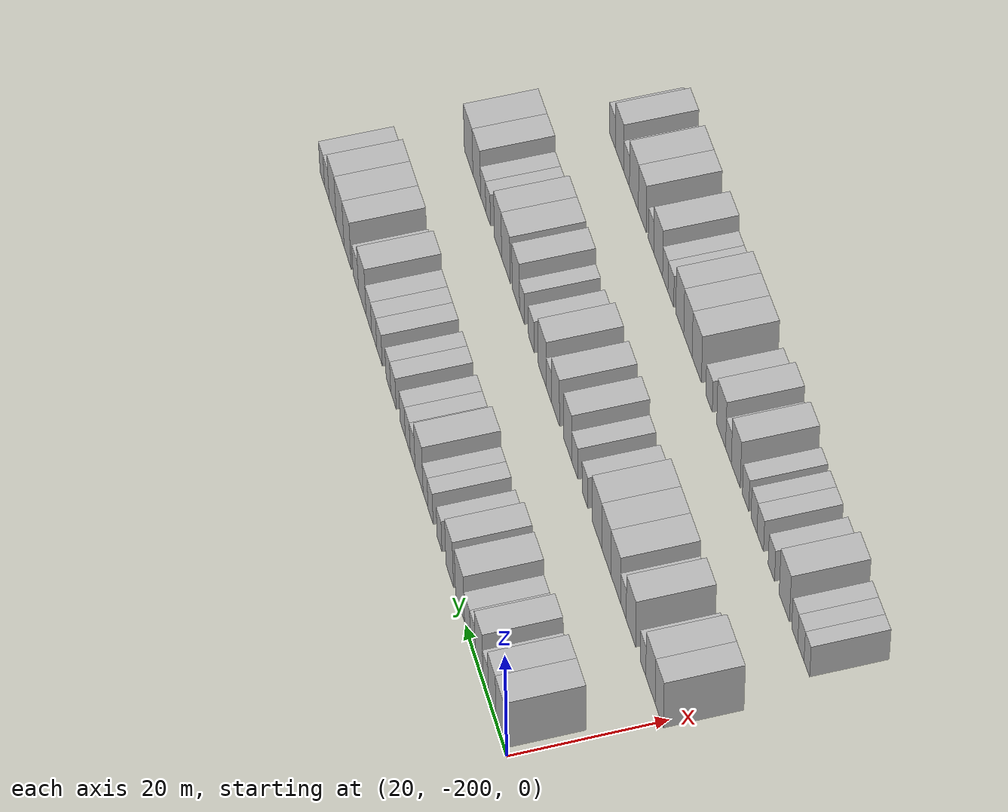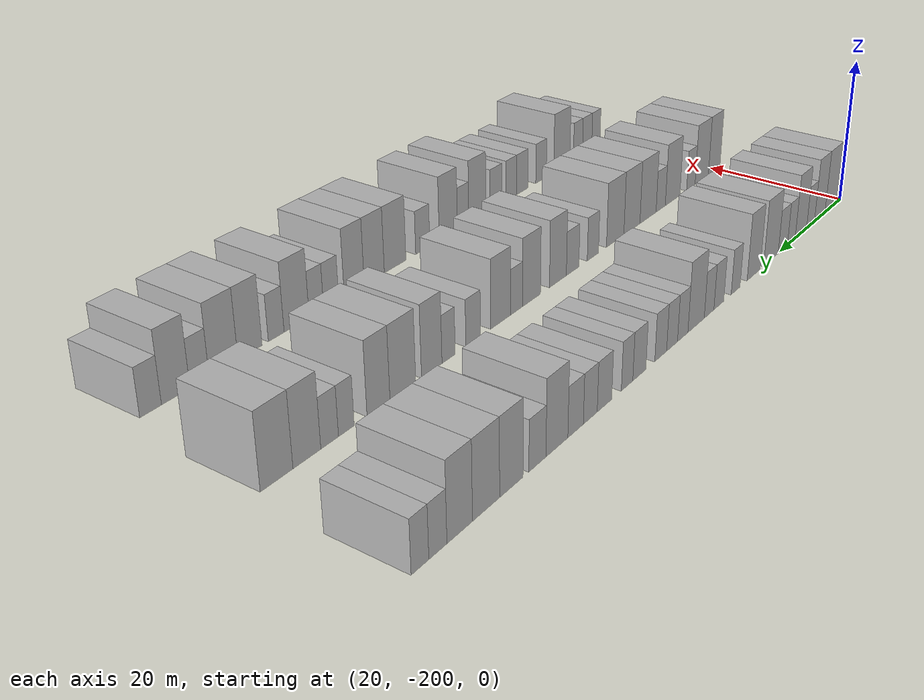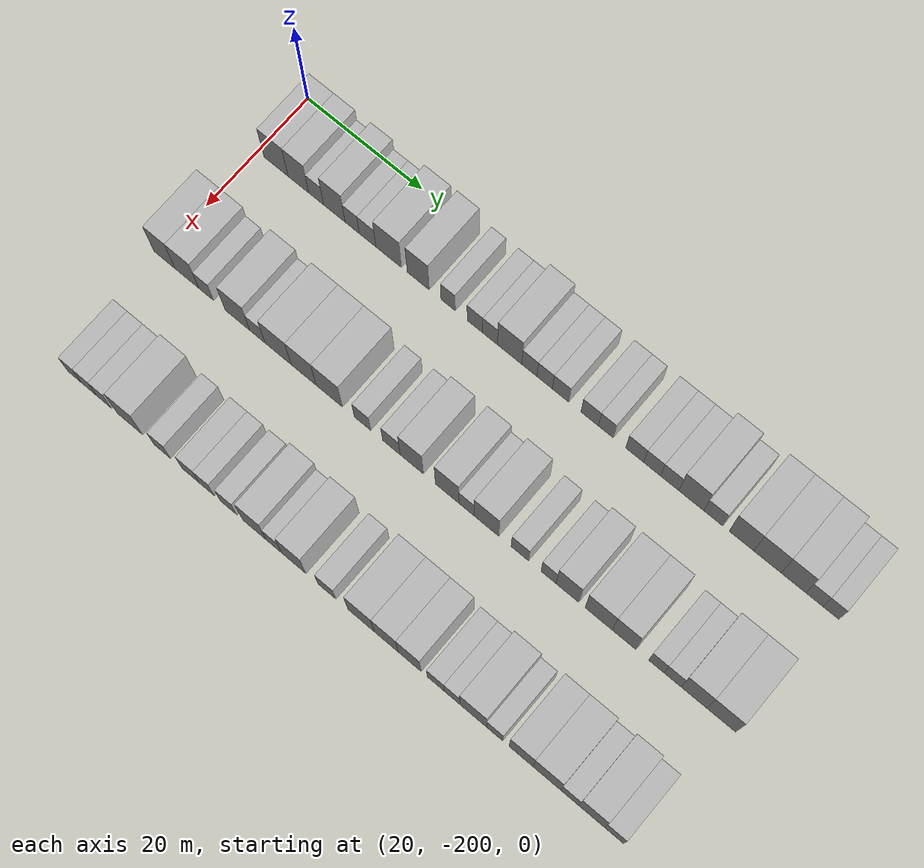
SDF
<sdf version="1.6">
 <world name="default">
  <model name="building_34">
   <static>1</static>
   <pose>25.0000 -196.7236 0 0.000000 0.000000 0.000000</pose>
   <link name="link">
    <pose>0 0 4.50 0 0 0</pose>
    <collision name="collision"><geometry><box><size>10.0000 4.2052 9.0000</size></box></geometry></collision>
    <visual name="visual">
     <cast_shadows>0</cast_shadows>
     <geometry><box><size>10.0000 4.2052 9.0000</size></box></geometry>
     <material>
      <script>
       <uri>model://HANNAS_wall/materials/scripts</uri>
       <uri>model://HANNAS_wall/materials/textures</uri>
       <name>vrc/HANNAS_wall</name>
      </script>
     </material>
    </visual>
   </link>
  </model>
  <model name="building_35">
   <static>1</static>
   <pose>25.0000 -192.8095 0 0.000000 0.000000 0.000000</pose>
   <link name="link">
    <pose>0 0 4.50 0 0 0</pose>
    <collision name="collision"><geometry><box><size>10.0000 3.6229 9.0000</size></box></geometry></collision>
    <visual name="visual">
     <cast_shadows>0</cast_shadows>
     <geometry><box><size>10.0000 3.6229 9.0000</size></box></geometry>
     <material>
      <script>
       <uri>model://HANNAS_wall/materials/scripts</uri>
       <uri>model://HANNAS_wall/materials/textures</uri>
       <name>vrc/HANNAS_wall</name>
      </script>
     </material>
    </visual>
   </link>
  </model>
  <model name="building_36">
   <static>1</static>
   <pose>25.0000 -189.6984 0 0.000000 0.000000 0.000000</pose>
   <link name="link">
    <pose>0 0 3.00 0 0 0</pose>
    <collision name="collision"><geometry><box><size>10.0000 2.5993 6.0000</size></box></geometry></collision>
    <visual name="visual">
     <cast_shadows>0</cast_shadows>
     <geometry><box><size>10.0000 2.5993 6.0000</size></box></geometry>
     <material>
      <script>
       <uri>model://HANNAS_wall/materials/scripts</uri>
       <uri>model://HANNAS_wall/materials/textures</uri>
       <name>vrc/HANNAS_wall</name>
      </script>
     </material>
    </visual>
   </link>
  </model>
  <model name="building_37">
   <static>1</static>
   <pose>25.0000 -186.5488 0 0.000000 0.000000 0.000000</pose>
   <link name="link">
    <pose>0 0 4.50 0 0 0</pose>
    <collision name="collision"><geometry><box><size>10.0000 3.7000 9.0000</size></box></geometry></collision>
    <visual name="visual">
     <cast_shadows>0</cast_shadows>
     <geometry><box><size>10.0000 3.7000 9.0000</size></box></geometry>
     <material>
      <script>
       <uri>model://HANNAS_wall/materials/scripts</uri>
       <uri>model://HANNAS_wall/materials/textures</uri>
       <name>vrc/HANNAS_wall</name>
      </script>
     </material>
    </visual>
   </link>
  </model>
  <model name="building_38">
   <static>1</static>
   <pose>25.0000 -183.4717 0 0.000000 0.000000 0.000000</pose>
   <link name="link">
    <pose>0 0 3.00 0 0 0</pose>
    <collision name="collision"><geometry><box><size>10.0000 2.4542 6.0000</size></box></geometry></collision>
    <visual name="visual">
     <cast_shadows>0</cast_shadows>
     <geometry><box><size>10.0000 2.4542 6.0000</size></box></geometry>
     <material>
      <script>
       <uri>model://HANNAS_wall/materials/scripts</uri>
       <uri>model://HANNAS_wall/materials/textures</uri>
       <name>vrc/HANNAS_wall</name>
      </script>
     </material>
    </visual>
   </link>
  </model>
  <model name="building_39">
   <static>1</static>
   <pose>25.0000 -180.8231 0 0.000000 0.000000 0.000000</pose>
   <link name="link">
    <pose>0 0 3.00 0 0 0</pose>
    <collision name="collision"><geometry><box><size>10.0000 2.8430 6.0000</size></box></geometry></collision>
    <visual name="visual">
     <cast_shadows>0</cast_shadows>
     <geometry><box><size>10.0000 2.8430 6.0000</size></box></geometry>
     <material>
      <script>
       <uri>model://HANNAS_wall/materials/scripts</uri>
       <uri>model://HANNAS_wall/materials/textures</uri>
       <name>vrc/HANNAS_wall</name>
      </script>
     </material>
    </visual>
   </link>
  </model>
  <model name="building_40">
   <static>1</static>
   <pose>25.0000 -177.2115 0 0.000000 0.000000 0.000000</pose>
   <link name="link">
    <pose>0 0 4.50 0 0 0</pose>
    <collision name="collision"><geometry><box><size>10.0000 4.3802 9.0000</size></box></geometry></collision>
    <visual name="visual">
     <cast_shadows>0</cast_shadows>
     <geometry><box><size>10.0000 4.3802 9.0000</size></box></geometry>
     <material>
      <script>
       <uri>model://HANNAS_wall/materials/scripts</uri>
       <uri>model://HANNAS_wall/materials/textures</uri>
       <name>vrc/HANNAS_wall</name>
      </script>
     </material>
    </visual>
   </link>
  </model>
  <model name="building_41">
   <static>1</static>
   <pose>25.0000 -172.1595 0 0.000000 0.000000 0.000000</pose>
   <link name="link">
    <pose>0 0 4.50 0 0 0</pose>
    <collision name="collision"><geometry><box><size>10.0000 3.7238 9.0000</size></box></geometry></collision>
    <visual name="visual">
     <cast_shadows>0</cast_shadows>
     <geometry><box><size>10.0000 3.7238 9.0000</size></box></geometry>
     <material>
      <script>
       <uri>model://HANNAS_wall/materials/scripts</uri>
       <uri>model://HANNAS_wall/materials/textures</uri>
       <name>vrc/HANNAS_wall</name>
      </script>
     </material>
    </visual>
   </link>
  </model>
  <model name="building_42">
   <static>1</static>
   <pose>25.0000 -167.0955 0 0.000000 0.000000 0.000000</pose>
   <link name="link">
    <pose>0 0 3.00 0 0 0</pose>
    <collision name="collision"><geometry><box><size>10.0000 2.4041 6.0000</size></box></geometry></collision>
    <visual name="visual">
     <cast_shadows>0</cast_shadows>
     <geometry><box><size>10.0000 2.4041 6.0000</size></box></geometry>
     <material>
      <script>
       <uri>model://HANNAS_wall/materials/scripts</uri>
       <uri>model://HANNAS_wall/materials/textures</uri>
       <name>vrc/HANNAS_wall</name>
      </script>
     </material>
    </visual>
   </link>
  </model>
  <model name="building_43">
   <static>1</static>
   <pose>25.0000 -162.6048 0 0.000000 0.000000 0.000000</pose>
   <link name="link">
    <pose>0 0 3.00 0 0 0</pose>
    <collision name="collision"><geometry><box><size>10.0000 2.5773 6.0000</size></box></geometry></collision>
    <visual name="visual">
     <cast_shadows>0</cast_shadows>
     <geometry><box><size>10.0000 2.5773 6.0000</size></box></geometry>
     <material>
      <script>
       <uri>model://HANNAS_wall/materials/scripts</uri>
       <uri>model://HANNAS_wall/materials/textures</uri>
       <name>vrc/HANNAS_wall</name>
      </script>
     </material>
    </visual>
   </link>
  </model>
  <model name="building_44">
   <static>1</static>
   <pose>25.0000 -160.0798 0 0.000000 0.000000 0.000000</pose>
   <link name="link">
    <pose>0 0 3.00 0 0 0</pose>
    <collision name="collision"><geometry><box><size>10.0000 2.4727 6.0000</size></box></geometry></collision>
    <visual name="visual">
     <cast_shadows>0</cast_shadows>
     <geometry><box><size>10.0000 2.4727 6.0000</size></box></geometry>
     <material>
      <script>
       <uri>model://HANNAS_wall/materials/scripts</uri>
       <uri>model://HANNAS_wall/materials/textures</uri>
       <name>vrc/HANNAS_wall</name>
      </script>
     </material>
    </visual>
   </link>
  </model>
  <model name="building_45">
   <static>1</static>
   <pose>25.0000 -156.8153 0 0.000000 0.000000 0.000000</pose>
   <link name="link">
    <pose>0 0 4.50 0 0 0</pose>
    <collision name="collision"><geometry><box><size>10.0000 4.0565 9.0000</size></box></geometry></collision>
    <visual name="visual">
     <cast_shadows>0</cast_shadows>
     <geometry><box><size>10.0000 4.0565 9.0000</size></box></geometry>
     <material>
      <script>
       <uri>model://HANNAS_wall/materials/scripts</uri>
       <uri>model://HANNAS_wall/materials/textures</uri>
       <name>vrc/HANNAS_wall</name>
      </script>
     </material>
    </visual>
   </link>
  </model>
  <model name="building_46">
   <static>1</static>
   <pose>25.0000 -153.5334 0 0.000000 0.000000 0.000000</pose>
   <link name="link">
    <pose>0 0 3.00 0 0 0</pose>
    <collision name="collision"><geometry><box><size>10.0000 2.5072 6.0000</size></box></geometry></collision>
    <visual name="visual">
     <cast_shadows>0</cast_shadows>
     <geometry><box><size>10.0000 2.5072 6.0000</size></box></geometry>
     <material>
      <script>
       <uri>model://HANNAS_wall/materials/scripts</uri>
       <uri>model://HANNAS_wall/materials/textures</uri>
       <name>vrc/HANNAS_wall</name>
      </script>
     </material>
    </visual>
   </link>
  </model>
  <model name="building_47">
   <static>1</static>
   <pose>25.0000 -151.0054 0 0.000000 0.000000 0.000000</pose>
   <link name="link">
    <pose>0 0 3.00 0 0 0</pose>
    <collision name="collision"><geometry><box><size>10.0000 2.5489 6.0000</size></box></geometry></collision>
    <visual name="visual">
     <cast_shadows>0</cast_shadows>
     <geometry><box><size>10.0000 2.5489 6.0000</size></box></geometry>
     <material>
      <script>
       <uri>model://HANNAS_wall/materials/scripts</uri>
       <uri>model://HANNAS_wall/materials/textures</uri>
       <name>vrc/HANNAS_wall</name>
      </script>
     </material>
    </visual>
   </link>
  </model>
  <model name="building_48">
   <static>1</static>
   <pose>25.0000 -148.3815 0 0.000000 0.000000 0.000000</pose>
   <link name="link">
    <pose>0 0 3.00 0 0 0</pose>
    <collision name="collision"><geometry><box><size>10.0000 2.6989 6.0000</size></box></geometry></collision>
    <visual name="visual">
     <cast_shadows>0</cast_shadows>
     <geometry><box><size>10.0000 2.6989 6.0000</size></box></geometry>
     <material>
      <script>
       <uri>model://HANNAS_wall/materials/scripts</uri>
       <uri>model://HANNAS_wall/materials/textures</uri>
       <name>vrc/HANNAS_wall</name>
      </script>
     </material>
    </visual>
   </link>
  </model>
  <model name="building_49">
   <static>1</static>
   <pose>25.0000 -143.6136 0 0.000000 0.000000 0.000000</pose>
   <link name="link">
    <pose>0 0 3.00 0 0 0</pose>
    <collision name="collision"><geometry><box><size>10.0000 2.8368 6.0000</size></box></geometry></collision>
    <visual name="visual">
     <cast_shadows>0</cast_shadows>
     <geometry><box><size>10.0000 2.8368 6.0000</size></box></geometry>
     <material>
      <script>
       <uri>model://HANNAS_wall/materials/scripts</uri>
       <uri>model://HANNAS_wall/materials/textures</uri>
       <name>vrc/HANNAS_wall</name>
      </script>
     </material>
    </visual>
   </link>
  </model>
  <model name="building_50">
   <static>1</static>
   <pose>25.0000 -140.9796 0 0.000000 0.000000 0.000000</pose>
   <link name="link">
    <pose>0 0 3.00 0 0 0</pose>
    <collision name="collision"><geometry><box><size>10.0000 2.4312 6.0000</size></box></geometry></collision>
    <visual name="visual">
     <cast_shadows>0</cast_shadows>
     <geometry><box><size>10.0000 2.4312 6.0000</size></box></geometry>
     <material>
      <script>
       <uri>model://HANNAS_wall/materials/scripts</uri>
       <uri>model://HANNAS_wall/materials/textures</uri>
       <name>vrc/HANNAS_wall</name>
      </script>
     </material>
    </visual>
   </link>
  </model>
  <model name="building_51">
   <static>1</static>
   <pose>25.0000 -136.3112 0 0.000000 0.000000 0.000000</pose>
   <link name="link">
    <pose>0 0 3.00 0 0 0</pose>
    <collision name="collision"><geometry><box><size>10.0000 2.9058 6.0000</size></box></geometry></collision>
    <visual name="visual">
     <cast_shadows>0</cast_shadows>
     <geometry><box><size>10.0000 2.9058 6.0000</size></box></geometry>
     <material>
      <script>
       <uri>model://HANNAS_wall/materials/scripts</uri>
       <uri>model://HANNAS_wall/materials/textures</uri>
       <name>vrc/HANNAS_wall</name>
      </script>
     </material>
    </visual>
   </link>
  </model>
  <model name="building_52">
   <static>1</static>
   <pose>25.0000 -133.5042 0 0.000000 0.000000 0.000000</pose>
   <link name="link">
    <pose>0 0 3.00 0 0 0</pose>
    <collision name="collision"><geometry><box><size>10.0000 2.7081 6.0000</size></box></geometry></collision>
    <visual name="visual">
     <cast_shadows>0</cast_shadows>
     <geometry><box><size>10.0000 2.7081 6.0000</size></box></geometry>
     <material>
      <script>
       <uri>model://HANNAS_wall/materials/scripts</uri>
       <uri>model://HANNAS_wall/materials/textures</uri>
       <name>vrc/HANNAS_wall</name>
      </script>
     </material>
    </visual>
   </link>
  </model>
  <model name="building_53">
   <static>1</static>
   <pose>25.0000 -130.6800 0 0.000000 0.000000 0.000000</pose>
   <link name="link">
    <pose>0 0 3.00 0 0 0</pose>
    <collision name="collision"><geometry><box><size>10.0000 2.9404 6.0000</size></box></geometry></collision>
    <visual name="visual">
     <cast_shadows>0</cast_shadows>
     <geometry><box><size>10.0000 2.9404 6.0000</size></box></geometry>
     <material>
      <script>
       <uri>model://HANNAS_wall/materials/scripts</uri>
       <uri>model://HANNAS_wall/materials/textures</uri>
       <name>vrc/HANNAS_wall</name>
      </script>
     </material>
    </visual>
   </link>
  </model>
  <model name="building_54">
   <static>1</static>
   <pose>25.0000 -127.2084 0 0.000000 0.000000 0.000000</pose>
   <link name="link">
    <pose>0 0 4.50 0 0 0</pose>
    <collision name="collision"><geometry><box><size>10.0000 4.0027 9.0000</size></box></geometry></collision>
    <visual name="visual">
     <cast_shadows>0</cast_shadows>
     <geometry><box><size>10.0000 4.0027 9.0000</size></box></geometry>
     <material>
      <script>
       <uri>model://HANNAS_wall/materials/scripts</uri>
       <uri>model://HANNAS_wall/materials/textures</uri>
       <name>vrc/HANNAS_wall</name>
      </script>
     </material>
    </visual>
   </link>
  </model>
  <model name="building_55">
   <static>1</static>
   <pose>25.0000 -123.7104 0 0.000000 0.000000 0.000000</pose>
   <link name="link">
    <pose>0 0 3.00 0 0 0</pose>
    <collision name="collision"><geometry><box><size>10.0000 2.9934 6.0000</size></box></geometry></collision>
    <visual name="visual">
     <cast_shadows>0</cast_shadows>
     <geometry><box><size>10.0000 2.9934 6.0000</size></box></geometry>
     <material>
      <script>
       <uri>model://HANNAS_wall/materials/scripts</uri>
       <uri>model://HANNAS_wall/materials/textures</uri>
       <name>vrc/HANNAS_wall</name>
      </script>
     </material>
    </visual>
   </link>
  </model>
  <model name="building_56">
   <static>1</static>
   <pose>25.0000 -119.2703 0 0.000000 0.000000 0.000000</pose>
   <link name="link">
    <pose>0 0 4.50 0 0 0</pose>
    <collision name="collision"><geometry><box><size>10.0000 3.8868 9.0000</size></box></geometry></collision>
    <visual name="visual">
     <cast_shadows>0</cast_shadows>
     <geometry><box><size>10.0000 3.8868 9.0000</size></box></geometry>
     <material>
      <script>
       <uri>model://HANNAS_wall/materials/scripts</uri>
       <uri>model://HANNAS_wall/materials/textures</uri>
       <name>vrc/HANNAS_wall</name>
      </script>
     </material>
    </visual>
   </link>
  </model>
  <model name="building_57">
   <static>1</static>
   <pose>25.0000 -115.1791 0 0.000000 0.000000 0.000000</pose>
   <link name="link">
    <pose>0 0 4.50 0 0 0</pose>
    <collision name="collision"><geometry><box><size>10.0000 4.2957 9.0000</size></box></geometry></collision>
    <visual name="visual">
     <cast_shadows>0</cast_shadows>
     <geometry><box><size>10.0000 4.2957 9.0000</size></box></geometry>
     <material>
      <script>
       <uri>model://HANNAS_wall/materials/scripts</uri>
       <uri>model://HANNAS_wall/materials/textures</uri>
       <name>vrc/HANNAS_wall</name>
      </script>
     </material>
    </visual>
   </link>
  </model>
  <model name="building_58">
   <static>1</static>
   <pose>25.0000 -111.1016 0 0.000000 0.000000 0.000000</pose>
   <link name="link">
    <pose>0 0 4.50 0 0 0</pose>
    <collision name="collision"><geometry><box><size>10.0000 3.8593 9.0000</size></box></geometry></collision>
    <visual name="visual">
     <cast_shadows>0</cast_shadows>
     <geometry><box><size>10.0000 3.8593 9.0000</size></box></geometry>
     <material>
      <script>
       <uri>model://HANNAS_wall/materials/scripts</uri>
       <uri>model://HANNAS_wall/materials/textures</uri>
       <name>vrc/HANNAS_wall</name>
      </script>
     </material>
    </visual>
   </link>
  </model>
  <model name="building_59">
   <static>1</static>
   <pose>25.0000 -107.8614 0 0.000000 0.000000 0.000000</pose>
   <link name="link">
    <pose>0 0 3.00 0 0 0</pose>
    <collision name="collision"><geometry><box><size>10.0000 2.6211 6.0000</size></box></geometry></collision>
    <visual name="visual">
     <cast_shadows>0</cast_shadows>
     <geometry><box><size>10.0000 2.6211 6.0000</size></box></geometry>
     <material>
      <script>
       <uri>model://HANNAS_wall/materials/scripts</uri>
       <uri>model://HANNAS_wall/materials/textures</uri>
       <name>vrc/HANNAS_wall</name>
      </script>
     </material>
    </visual>
   </link>
  </model>
  <model name="building_60">
   <static>1</static>
   <pose>25.0000 -105.3058 0 0.000000 0.000000 0.000000</pose>
   <link name="link">
    <pose>0 0 3.00 0 0 0</pose>
    <collision name="collision"><geometry><box><size>10.0000 2.4901 6.0000</size></box></geometry></collision>
    <visual name="visual">
     <cast_shadows>0</cast_shadows>
     <geometry><box><size>10.0000 2.4901 6.0000</size></box></geometry>
     <material>
      <script>
       <uri>model://HANNAS_wall/materials/scripts</uri>
       <uri>model://HANNAS_wall/materials/textures</uri>
       <name>vrc/HANNAS_wall</name>
      </script>
     </material>
    </visual>
   </link>
  </model>
  <model name="building_212">
   <static>1</static>
   <pose>44.0000 -199.0825 0 0.000000 0.000000 0.000000</pose>
   <link name="link">
    <pose>0 0 4.50 0 0 0</pose>
    <collision name="collision"><geometry><box><size>10.0000 3.6982 9.0000</size></box></geometry></collision>
    <visual name="visual">
     <cast_shadows>0</cast_shadows>
     <geometry><box><size>10.0000 3.6982 9.0000</size></box></geometry>
     <material>
      <script>
       <uri>model://HANNAS_wall/materials/scripts</uri>
       <uri>model://HANNAS_wall/materials/textures</uri>
       <name>vrc/HANNAS_wall</name>
      </script>
     </material>
    </visual>
   </link>
  </model>
  <model name="building_213">
   <static>1</static>
   <pose>44.0000 -195.1579 0 0.000000 0.000000 0.000000</pose>
   <link name="link">
    <pose>0 0 4.50 0 0 0</pose>
    <collision name="collision"><geometry><box><size>10.0000 4.1509 9.0000</size></box></geometry></collision>
    <visual name="visual">
     <cast_shadows>0</cast_shadows>
     <geometry><box><size>10.0000 4.1509 9.0000</size></box></geometry>
     <material>
      <script>
       <uri>model://HANNAS_wall/materials/scripts</uri>
       <uri>model://HANNAS_wall/materials/textures</uri>
       <name>vrc/HANNAS_wall</name>
      </script>
     </material>
    </visual>
   </link>
  </model>
  <model name="building_214">
   <static>1</static>
   <pose>44.0000 -191.7915 0 0.000000 0.000000 0.000000</pose>
   <link name="link">
    <pose>0 0 3.00 0 0 0</pose>
    <collision name="collision"><geometry><box><size>10.0000 2.5818 6.0000</size></box></geometry></collision>
    <visual name="visual">
     <cast_shadows>0</cast_shadows>
     <geometry><box><size>10.0000 2.5818 6.0000</size></box></geometry>
     <material>
      <script>
       <uri>model://HANNAS_wall/materials/scripts</uri>
       <uri>model://HANNAS_wall/materials/textures</uri>
       <name>vrc/HANNAS_wall</name>
      </script>
     </material>
    </visual>
   </link>
  </model>
  <model name="building_215">
   <static>1</static>
   <pose>44.0000 -186.3824 0 0.000000 0.000000 0.000000</pose>
   <link name="link">
    <pose>0 0 4.50 0 0 0</pose>
    <collision name="collision"><geometry><box><size>10.0000 4.2364 9.0000</size></box></geometry></collision>
    <visual name="visual">
     <cast_shadows>0</cast_shadows>
     <geometry><box><size>10.0000 4.2364 9.0000</size></box></geometry>
     <material>
      <script>
       <uri>model://HANNAS_wall/materials/scripts</uri>
       <uri>model://HANNAS_wall/materials/textures</uri>
       <name>vrc/HANNAS_wall</name>
      </script>
     </material>
    </visual>
   </link>
  </model>
  <model name="building_216">
   <static>1</static>
   <pose>44.0000 -182.9518 0 0.000000 0.000000 0.000000</pose>
   <link name="link">
    <pose>0 0 3.00 0 0 0</pose>
    <collision name="collision"><geometry><box><size>10.0000 2.6247 6.0000</size></box></geometry></collision>
    <visual name="visual">
     <cast_shadows>0</cast_shadows>
     <geometry><box><size>10.0000 2.6247 6.0000</size></box></geometry>
     <material>
      <script>
       <uri>model://HANNAS_wall/materials/scripts</uri>
       <uri>model://HANNAS_wall/materials/textures</uri>
       <name>vrc/HANNAS_wall</name>
      </script>
     </material>
    </visual>
   </link>
  </model>
  <model name="building_217">
   <static>1</static>
   <pose>44.0000 -179.4192 0 0.000000 0.000000 0.000000</pose>
   <link name="link">
    <pose>0 0 4.50 0 0 0</pose>
    <collision name="collision"><geometry><box><size>10.0000 4.4406 9.0000</size></box></geometry></collision>
    <visual name="visual">
     <cast_shadows>0</cast_shadows>
     <geometry><box><size>10.0000 4.4406 9.0000</size></box></geometry>
     <material>
      <script>
       <uri>model://HANNAS_wall/materials/scripts</uri>
       <uri>model://HANNAS_wall/materials/textures</uri>
       <name>vrc/HANNAS_wall</name>
      </script>
     </material>
    </visual>
   </link>
  </model>
  <model name="building_218">
   <static>1</static>
   <pose>44.0000 -175.0688 0 0.000000 0.000000 0.000000</pose>
   <link name="link">
    <pose>0 0 4.50 0 0 0</pose>
    <collision name="collision"><geometry><box><size>10.0000 4.2602 9.0000</size></box></geometry></collision>
    <visual name="visual">
     <cast_shadows>0</cast_shadows>
     <geometry><box><size>10.0000 4.2602 9.0000</size></box></geometry>
     <material>
      <script>
       <uri>model://HANNAS_wall/materials/scripts</uri>
       <uri>model://HANNAS_wall/materials/textures</uri>
       <name>vrc/HANNAS_wall</name>
      </script>
     </material>
    </visual>
   </link>
  </model>
  <model name="building_219">
   <static>1</static>
   <pose>44.0000 -170.7146 0 0.000000 0.000000 0.000000</pose>
   <link name="link">
    <pose>0 0 4.50 0 0 0</pose>
    <collision name="collision"><geometry><box><size>10.0000 4.4482 9.0000</size></box></geometry></collision>
    <visual name="visual">
     <cast_shadows>0</cast_shadows>
     <geometry><box><size>10.0000 4.4482 9.0000</size></box></geometry>
     <material>
      <script>
       <uri>model://HANNAS_wall/materials/scripts</uri>
       <uri>model://HANNAS_wall/materials/textures</uri>
       <name>vrc/HANNAS_wall</name>
      </script>
     </material>
    </visual>
   </link>
  </model>
  <model name="building_220">
   <static>1</static>
   <pose>44.0000 -165.1244 0 0.000000 0.000000 0.000000</pose>
   <link name="link">
    <pose>0 0 3.00 0 0 0</pose>
    <collision name="collision"><geometry><box><size>10.0000 2.7321 6.0000</size></box></geometry></collision>
    <visual name="visual">
     <cast_shadows>0</cast_shadows>
     <geometry><box><size>10.0000 2.7321 6.0000</size></box></geometry>
     <material>
      <script>
       <uri>model://HANNAS_wall/materials/scripts</uri>
       <uri>model://HANNAS_wall/materials/textures</uri>
       <name>vrc/HANNAS_wall</name>
      </script>
     </material>
    </visual>
   </link>
  </model>
  <model name="building_221">
   <static>1</static>
   <pose>44.0000 -160.3000 0 0.000000 0.000000 0.000000</pose>
   <link name="link">
    <pose>0 0 3.00 0 0 0</pose>
    <collision name="collision"><geometry><box><size>10.0000 2.9168 6.0000</size></box></geometry></collision>
    <visual name="visual">
     <cast_shadows>0</cast_shadows>
     <geometry><box><size>10.0000 2.9168 6.0000</size></box></geometry>
     <material>
      <script>
       <uri>model://HANNAS_wall/materials/scripts</uri>
       <uri>model://HANNAS_wall/materials/textures</uri>
       <name>vrc/HANNAS_wall</name>
      </script>
     </material>
    </visual>
   </link>
  </model>
  <model name="building_222">
   <static>1</static>
   <pose>44.0000 -156.9307 0 0.000000 0.000000 0.000000</pose>
   <link name="link">
    <pose>0 0 4.50 0 0 0</pose>
    <collision name="collision"><geometry><box><size>10.0000 3.8217 9.0000</size></box></geometry></collision>
    <visual name="visual">
     <cast_shadows>0</cast_shadows>
     <geometry><box><size>10.0000 3.8217 9.0000</size></box></geometry>
     <material>
      <script>
       <uri>model://HANNAS_wall/materials/scripts</uri>
       <uri>model://HANNAS_wall/materials/textures</uri>
       <name>vrc/HANNAS_wall</name>
      </script>
     </material>
    </visual>
   </link>
  </model>
  <model name="building_223">
   <static>1</static>
   <pose>44.0000 -151.0873 0 0.000000 0.000000 0.000000</pose>
   <link name="link">
    <pose>0 0 4.50 0 0 0</pose>
    <collision name="collision"><geometry><box><size>10.0000 3.8651 9.0000</size></box></geometry></collision>
    <visual name="visual">
     <cast_shadows>0</cast_shadows>
     <geometry><box><size>10.0000 3.8651 9.0000</size></box></geometry>
     <material>
      <script>
       <uri>model://HANNAS_wall/materials/scripts</uri>
       <uri>model://HANNAS_wall/materials/textures</uri>
       <name>vrc/HANNAS_wall</name>
      </script>
     </material>
    </visual>
   </link>
  </model>
  <model name="building_224">
   <static>1</static>
   <pose>44.0000 -147.9302 0 0.000000 0.000000 0.000000</pose>
   <link name="link">
    <pose>0 0 3.00 0 0 0</pose>
    <collision name="collision"><geometry><box><size>10.0000 2.4491 6.0000</size></box></geometry></collision>
    <visual name="visual">
     <cast_shadows>0</cast_shadows>
     <geometry><box><size>10.0000 2.4491 6.0000</size></box></geometry>
     <material>
      <script>
       <uri>model://HANNAS_wall/materials/scripts</uri>
       <uri>model://HANNAS_wall/materials/textures</uri>
       <name>vrc/HANNAS_wall</name>
      </script>
     </material>
    </visual>
   </link>
  </model>
  <model name="building_225">
   <static>1</static>
   <pose>44.0000 -144.6918 0 0.000000 0.000000 0.000000</pose>
   <link name="link">
    <pose>0 0 4.50 0 0 0</pose>
    <collision name="collision"><geometry><box><size>10.0000 4.0277 9.0000</size></box></geometry></collision>
    <visual name="visual">
     <cast_shadows>0</cast_shadows>
     <geometry><box><size>10.0000 4.0277 9.0000</size></box></geometry>
     <material>
      <script>
       <uri>model://HANNAS_wall/materials/scripts</uri>
       <uri>model://HANNAS_wall/materials/textures</uri>
       <name>vrc/HANNAS_wall</name>
      </script>
     </material>
    </visual>
   </link>
  </model>
  <model name="building_226">
   <static>1</static>
   <pose>44.0000 -139.2670 0 0.000000 0.000000 0.000000</pose>
   <link name="link">
    <pose>0 0 3.00 0 0 0</pose>
    <collision name="collision"><geometry><box><size>10.0000 2.8218 6.0000</size></box></geometry></collision>
    <visual name="visual">
     <cast_shadows>0</cast_shadows>
     <geometry><box><size>10.0000 2.8218 6.0000</size></box></geometry>
     <material>
      <script>
       <uri>model://HANNAS_wall/materials/scripts</uri>
       <uri>model://HANNAS_wall/materials/textures</uri>
       <name>vrc/HANNAS_wall</name>
      </script>
     </material>
    </visual>
   </link>
  </model>
  <model name="building_227">
   <static>1</static>
   <pose>44.0000 -134.6528 0 0.000000 0.000000 0.000000</pose>
   <link name="link">
    <pose>0 0 3.00 0 0 0</pose>
    <collision name="collision"><geometry><box><size>10.0000 2.4067 6.0000</size></box></geometry></collision>
    <visual name="visual">
     <cast_shadows>0</cast_shadows>
     <geometry><box><size>10.0000 2.4067 6.0000</size></box></geometry>
     <material>
      <script>
       <uri>model://HANNAS_wall/materials/scripts</uri>
       <uri>model://HANNAS_wall/materials/textures</uri>
       <name>vrc/HANNAS_wall</name>
      </script>
     </material>
    </visual>
   </link>
  </model>
  <model name="building_228">
   <static>1</static>
   <pose>44.0000 -131.6294 0 0.000000 0.000000 0.000000</pose>
   <link name="link">
    <pose>0 0 4.50 0 0 0</pose>
    <collision name="collision"><geometry><box><size>10.0000 3.6401 9.0000</size></box></geometry></collision>
    <visual name="visual">
     <cast_shadows>0</cast_shadows>
     <geometry><box><size>10.0000 3.6401 9.0000</size></box></geometry>
     <material>
      <script>
       <uri>model://HANNAS_wall/materials/scripts</uri>
       <uri>model://HANNAS_wall/materials/textures</uri>
       <name>vrc/HANNAS_wall</name>
      </script>
     </material>
    </visual>
   </link>
  </model>
  <model name="building_229">
   <static>1</static>
   <pose>44.0000 -126.6391 0 0.000000 0.000000 0.000000</pose>
   <link name="link">
    <pose>0 0 4.50 0 0 0</pose>
    <collision name="collision"><geometry><box><size>10.0000 4.3404 9.0000</size></box></geometry></collision>
    <visual name="visual">
     <cast_shadows>0</cast_shadows>
     <geometry><box><size>10.0000 4.3404 9.0000</size></box></geometry>
     <material>
      <script>
       <uri>model://HANNAS_wall/materials/scripts</uri>
       <uri>model://HANNAS_wall/materials/textures</uri>
       <name>vrc/HANNAS_wall</name>
      </script>
     </material>
    </visual>
   </link>
  </model>
  <model name="building_230">
   <static>1</static>
   <pose>44.0000 -122.6125 0 0.000000 0.000000 0.000000</pose>
   <link name="link">
    <pose>0 0 4.50 0 0 0</pose>
    <collision name="collision"><geometry><box><size>10.0000 3.7129 9.0000</size></box></geometry></collision>
    <visual name="visual">
     <cast_shadows>0</cast_shadows>
     <geometry><box><size>10.0000 3.7129 9.0000</size></box></geometry>
     <material>
      <script>
       <uri>model://HANNAS_wall/materials/scripts</uri>
       <uri>model://HANNAS_wall/materials/textures</uri>
       <name>vrc/HANNAS_wall</name>
      </script>
     </material>
    </visual>
   </link>
  </model>
  <model name="building_231">
   <static>1</static>
   <pose>44.0000 -117.5523 0 0.000000 0.000000 0.000000</pose>
   <link name="link">
    <pose>0 0 3.00 0 0 0</pose>
    <collision name="collision"><geometry><box><size>10.0000 2.4076 6.0000</size></box></geometry></collision>
    <visual name="visual">
     <cast_shadows>0</cast_shadows>
     <geometry><box><size>10.0000 2.4076 6.0000</size></box></geometry>
     <material>
      <script>
       <uri>model://HANNAS_wall/materials/scripts</uri>
       <uri>model://HANNAS_wall/materials/textures</uri>
       <name>vrc/HANNAS_wall</name>
      </script>
     </material>
    </visual>
   </link>
  </model>
  <model name="building_232">
   <static>1</static>
   <pose>44.0000 -115.0328 0 0.000000 0.000000 0.000000</pose>
   <link name="link">
    <pose>0 0 3.00 0 0 0</pose>
    <collision name="collision"><geometry><box><size>10.0000 2.6314 6.0000</size></box></geometry></collision>
    <visual name="visual">
     <cast_shadows>0</cast_shadows>
     <geometry><box><size>10.0000 2.6314 6.0000</size></box></geometry>
     <material>
      <script>
       <uri>model://HANNAS_wall/materials/scripts</uri>
       <uri>model://HANNAS_wall/materials/textures</uri>
       <name>vrc/HANNAS_wall</name>
      </script>
     </material>
    </visual>
   </link>
  </model>
  <model name="building_233">
   <static>1</static>
   <pose>44.0000 -111.7251 0 0.000000 0.000000 0.000000</pose>
   <link name="link">
    <pose>0 0 4.50 0 0 0</pose>
    <collision name="collision"><geometry><box><size>10.0000 3.9839 9.0000</size></box></geometry></collision>
    <visual name="visual">
     <cast_shadows>0</cast_shadows>
     <geometry><box><size>10.0000 3.9839 9.0000</size></box></geometry>
     <material>
      <script>
       <uri>model://HANNAS_wall/materials/scripts</uri>
       <uri>model://HANNAS_wall/materials/textures</uri>
       <name>vrc/HANNAS_wall</name>
      </script>
     </material>
    </visual>
   </link>
  </model>
  <model name="building_234">
   <static>1</static>
   <pose>44.0000 -107.4966 0 0.000000 0.000000 0.000000</pose>
   <link name="link">
    <pose>0 0 4.50 0 0 0</pose>
    <collision name="collision"><geometry><box><size>10.0000 4.4731 9.0000</size></box></geometry></collision>
    <visual name="visual">
     <cast_shadows>0</cast_shadows>
     <geometry><box><size>10.0000 4.4731 9.0000</size></box></geometry>
     <material>
      <script>
       <uri>model://HANNAS_wall/materials/scripts</uri>
       <uri>model://HANNAS_wall/materials/textures</uri>
       <name>vrc/HANNAS_wall</name>
      </script>
     </material>
    </visual>
   </link>
  </model>
  <model name="building_386">
   <static>1</static>
   <pose>63.0000 -197.1040 0 0.000000 0.000000 0.000000</pose>
   <link name="link">
    <pose>0 0 3.00 0 0 0</pose>
    <collision name="collision"><geometry><box><size>10.0000 2.4000 6.0000</size></box></geometry></collision>
    <visual name="visual">
     <cast_shadows>0</cast_shadows>
     <geometry><box><size>10.0000 2.4000 6.0000</size></box></geometry>
     <material>
      <script>
       <uri>model://HANNAS_wall/materials/scripts</uri>
       <uri>model://HANNAS_wall/materials/textures</uri>
       <name>vrc/HANNAS_wall</name>
      </script>
     </material>
    </visual>
   </link>
  </model>
  <model name="building_387">
   <static>1</static>
   <pose>63.0000 -194.5740 0 0.000000 0.000000 0.000000</pose>
   <link name="link">
    <pose>0 0 3.00 0 0 0</pose>
    <collision name="collision"><geometry><box><size>10.0000 2.6600 6.0000</size></box></geometry></collision>
    <visual name="visual">
     <cast_shadows>0</cast_shadows>
     <geometry><box><size>10.0000 2.6600 6.0000</size></box></geometry>
     <material>
      <script>
       <uri>model://HANNAS_wall/materials/scripts</uri>
       <uri>model://HANNAS_wall/materials/textures</uri>
       <name>vrc/HANNAS_wall</name>
      </script>
     </material>
    </visual>
   </link>
  </model>
  <model name="building_388">
   <static>1</static>
   <pose>63.0000 -191.9725 0 0.000000 0.000000 0.000000</pose>
   <link name="link">
    <pose>0 0 3.00 0 0 0</pose>
    <collision name="collision"><geometry><box><size>10.0000 2.5430 6.0000</size></box></geometry></collision>
    <visual name="visual">
     <cast_shadows>0</cast_shadows>
     <geometry><box><size>10.0000 2.5430 6.0000</size></box></geometry>
     <material>
      <script>
       <uri>model://HANNAS_wall/materials/scripts</uri>
       <uri>model://HANNAS_wall/materials/textures</uri>
       <name>vrc/HANNAS_wall</name>
      </script>
     </material>
    </visual>
   </link>
  </model>
  <model name="building_389">
   <static>1</static>
   <pose>63.0000 -187.5210 0 0.000000 0.000000 0.000000</pose>
   <link name="link">
    <pose>0 0 4.50 0 0 0</pose>
    <collision name="collision"><geometry><box><size>10.0000 4.3600 9.0000</size></box></geometry></collision>
    <visual name="visual">
     <cast_shadows>0</cast_shadows>
     <geometry><box><size>10.0000 4.3600 9.0000</size></box></geometry>
     <material>
      <script>
       <uri>model://HANNAS_wall/materials/scripts</uri>
       <uri>model://HANNAS_wall/materials/textures</uri>
       <name>vrc/HANNAS_wall</name>
      </script>
     </material>
    </visual>
   </link>
  </model>
  <model name="building_390">
   <static>1</static>
   <pose>63.0000 -181.9630 0 0.000000 0.000000 0.000000</pose>
   <link name="link">
    <pose>0 0 3.00 0 0 0</pose>
    <collision name="collision"><geometry><box><size>10.0000 2.7559 6.0000</size></box></geometry></collision>
    <visual name="visual">
     <cast_shadows>0</cast_shadows>
     <geometry><box><size>10.0000 2.7559 6.0000</size></box></geometry>
     <material>
      <script>
       <uri>model://HANNAS_wall/materials/scripts</uri>
       <uri>model://HANNAS_wall/materials/textures</uri>
       <name>vrc/HANNAS_wall</name>
      </script>
     </material>
    </visual>
   </link>
  </model>
  <model name="building_391">
   <static>1</static>
   <pose>63.0000 -177.1599 0 0.000000 0.000000 0.000000</pose>
   <link name="link">
    <pose>0 0 3.00 0 0 0</pose>
    <collision name="collision"><geometry><box><size>10.0000 2.8504 6.0000</size></box></geometry></collision>
    <visual name="visual">
     <cast_shadows>0</cast_shadows>
     <geometry><box><size>10.0000 2.8504 6.0000</size></box></geometry>
     <material>
      <script>
       <uri>model://HANNAS_wall/materials/scripts</uri>
       <uri>model://HANNAS_wall/materials/textures</uri>
       <name>vrc/HANNAS_wall</name>
      </script>
     </material>
    </visual>
   </link>
  </model>
  <model name="building_392">
   <static>1</static>
   <pose>63.0000 -174.4249 0 0.000000 0.000000 0.000000</pose>
   <link name="link">
    <pose>0 0 3.00 0 0 0</pose>
    <collision name="collision"><geometry><box><size>10.0000 2.6196 6.0000</size></box></geometry></collision>
    <visual name="visual">
     <cast_shadows>0</cast_shadows>
     <geometry><box><size>10.0000 2.6196 6.0000</size></box></geometry>
     <material>
      <script>
       <uri>model://HANNAS_wall/materials/scripts</uri>
       <uri>model://HANNAS_wall/materials/textures</uri>
       <name>vrc/HANNAS_wall</name>
      </script>
     </material>
    </visual>
   </link>
  </model>
  <model name="building_393">
   <static>1</static>
   <pose>63.0000 -170.7240 0 0.000000 0.000000 0.000000</pose>
   <link name="link">
    <pose>0 0 3.00 0 0 0</pose>
    <collision name="collision"><geometry><box><size>10.0000 2.7823 6.0000</size></box></geometry></collision>
    <visual name="visual">
     <cast_shadows>0</cast_shadows>
     <geometry><box><size>10.0000 2.7823 6.0000</size></box></geometry>
     <material>
      <script>
       <uri>model://HANNAS_wall/materials/scripts</uri>
       <uri>model://HANNAS_wall/materials/textures</uri>
       <name>vrc/HANNAS_wall</name>
      </script>
     </material>
    </visual>
   </link>
  </model>
  <model name="building_394">
   <static>1</static>
   <pose>63.0000 -166.3603 0 0.000000 0.000000 0.000000</pose>
   <link name="link">
    <pose>0 0 4.50 0 0 0</pose>
    <collision name="collision"><geometry><box><size>10.0000 3.9451 9.0000</size></box></geometry></collision>
    <visual name="visual">
     <cast_shadows>0</cast_shadows>
     <geometry><box><size>10.0000 3.9451 9.0000</size></box></geometry>
     <material>
      <script>
       <uri>model://HANNAS_wall/materials/scripts</uri>
       <uri>model://HANNAS_wall/materials/textures</uri>
       <name>vrc/HANNAS_wall</name>
      </script>
     </material>
    </visual>
   </link>
  </model>
  <model name="building_395">
   <static>1</static>
   <pose>63.0000 -163.1107 0 0.000000 0.000000 0.000000</pose>
   <link name="link">
    <pose>0 0 3.00 0 0 0</pose>
    <collision name="collision"><geometry><box><size>10.0000 2.5541 6.0000</size></box></geometry></collision>
    <visual name="visual">
     <cast_shadows>0</cast_shadows>
     <geometry><box><size>10.0000 2.5541 6.0000</size></box></geometry>
     <material>
      <script>
       <uri>model://HANNAS_wall/materials/scripts</uri>
       <uri>model://HANNAS_wall/materials/textures</uri>
       <name>vrc/HANNAS_wall</name>
      </script>
     </material>
    </visual>
   </link>
  </model>
  <model name="building_396">
   <static>1</static>
   <pose>63.0000 -159.8405 0 0.000000 0.000000 0.000000</pose>
   <link name="link">
    <pose>0 0 4.50 0 0 0</pose>
    <collision name="collision"><geometry><box><size>10.0000 3.9861 9.0000</size></box></geometry></collision>
    <visual name="visual">
     <cast_shadows>0</cast_shadows>
     <geometry><box><size>10.0000 3.9861 9.0000</size></box></geometry>
     <material>
      <script>
       <uri>model://HANNAS_wall/materials/scripts</uri>
       <uri>model://HANNAS_wall/materials/textures</uri>
       <name>vrc/HANNAS_wall</name>
      </script>
     </material>
    </visual>
   </link>
  </model>
  <model name="building_397">
   <static>1</static>
   <pose>63.0000 -154.3798 0 0.000000 0.000000 0.000000</pose>
   <link name="link">
    <pose>0 0 3.00 0 0 0</pose>
    <collision name="collision"><geometry><box><size>10.0000 2.9354 6.0000</size></box></geometry></collision>
    <visual name="visual">
     <cast_shadows>0</cast_shadows>
     <geometry><box><size>10.0000 2.9354 6.0000</size></box></geometry>
     <material>
      <script>
       <uri>model://HANNAS_wall/materials/scripts</uri>
       <uri>model://HANNAS_wall/materials/textures</uri>
       <name>vrc/HANNAS_wall</name>
      </script>
     </material>
    </visual>
   </link>
  </model>
  <model name="building_398">
   <static>1</static>
   <pose>63.0000 -148.7716 0 0.000000 0.000000 0.000000</pose>
   <link name="link">
    <pose>0 0 4.50 0 0 0</pose>
    <collision name="collision"><geometry><box><size>10.0000 4.2811 9.0000</size></box></geometry></collision>
    <visual name="visual">
     <cast_shadows>0</cast_shadows>
     <geometry><box><size>10.0000 4.2811 9.0000</size></box></geometry>
     <material>
      <script>
       <uri>model://HANNAS_wall/materials/scripts</uri>
       <uri>model://HANNAS_wall/materials/textures</uri>
       <name>vrc/HANNAS_wall</name>
      </script>
     </material>
    </visual>
   </link>
  </model>
  <model name="building_399">
   <static>1</static>
   <pose>63.0000 -144.7060 0 0.000000 0.000000 0.000000</pose>
   <link name="link">
    <pose>0 0 4.50 0 0 0</pose>
    <collision name="collision"><geometry><box><size>10.0000 3.8501 9.0000</size></box></geometry></collision>
    <visual name="visual">
     <cast_shadows>0</cast_shadows>
     <geometry><box><size>10.0000 3.8501 9.0000</size></box></geometry>
     <material>
      <script>
       <uri>model://HANNAS_wall/materials/scripts</uri>
       <uri>model://HANNAS_wall/materials/textures</uri>
       <name>vrc/HANNAS_wall</name>
      </script>
     </material>
    </visual>
   </link>
  </model>
  <model name="building_400">
   <static>1</static>
   <pose>63.0000 -140.9330 0 0.000000 0.000000 0.000000</pose>
   <link name="link">
    <pose>0 0 4.50 0 0 0</pose>
    <collision name="collision"><geometry><box><size>10.0000 3.6959 9.0000</size></box></geometry></collision>
    <visual name="visual">
     <cast_shadows>0</cast_shadows>
     <geometry><box><size>10.0000 3.6959 9.0000</size></box></geometry>
     <material>
      <script>
       <uri>model://HANNAS_wall/materials/scripts</uri>
       <uri>model://HANNAS_wall/materials/textures</uri>
       <name>vrc/HANNAS_wall</name>
      </script>
     </material>
    </visual>
   </link>
  </model>
  <model name="building_401">
   <static>1</static>
   <pose>63.0000 -136.7410 0 0.000000 0.000000 0.000000</pose>
   <link name="link">
    <pose>0 0 3.00 0 0 0</pose>
    <collision name="collision"><geometry><box><size>10.0000 2.6880 6.0000</size></box></geometry></collision>
    <visual name="visual">
     <cast_shadows>0</cast_shadows>
     <geometry><box><size>10.0000 2.6880 6.0000</size></box></geometry>
     <material>
      <script>
       <uri>model://HANNAS_wall/materials/scripts</uri>
       <uri>model://HANNAS_wall/materials/textures</uri>
       <name>vrc/HANNAS_wall</name>
      </script>
     </material>
    </visual>
   </link>
  </model>
  <model name="building_402">
   <static>1</static>
   <pose>63.0000 -134.1439 0 0.000000 0.000000 0.000000</pose>
   <link name="link">
    <pose>0 0 3.00 0 0 0</pose>
    <collision name="collision"><geometry><box><size>10.0000 2.5063 6.0000</size></box></geometry></collision>
    <visual name="visual">
     <cast_shadows>0</cast_shadows>
     <geometry><box><size>10.0000 2.5063 6.0000</size></box></geometry>
     <material>
      <script>
       <uri>model://HANNAS_wall/materials/scripts</uri>
       <uri>model://HANNAS_wall/materials/textures</uri>
       <name>vrc/HANNAS_wall</name>
      </script>
     </material>
    </visual>
   </link>
  </model>
  <model name="building_403">
   <static>1</static>
   <pose>63.0000 -130.7831 0 0.000000 0.000000 0.000000</pose>
   <link name="link">
    <pose>0 0 4.50 0 0 0</pose>
    <collision name="collision"><geometry><box><size>10.0000 4.2153 9.0000</size></box></geometry></collision>
    <visual name="visual">
     <cast_shadows>0</cast_shadows>
     <geometry><box><size>10.0000 4.2153 9.0000</size></box></geometry>
     <material>
      <script>
       <uri>model://HANNAS_wall/materials/scripts</uri>
       <uri>model://HANNAS_wall/materials/textures</uri>
       <name>vrc/HANNAS_wall</name>
      </script>
     </material>
    </visual>
   </link>
  </model>
  <model name="building_404">
   <static>1</static>
   <pose>63.0000 -127.3939 0 0.000000 0.000000 0.000000</pose>
   <link name="link">
    <pose>0 0 3.00 0 0 0</pose>
    <collision name="collision"><geometry><box><size>10.0000 2.5631 6.0000</size></box></geometry></collision>
    <visual name="visual">
     <cast_shadows>0</cast_shadows>
     <geometry><box><size>10.0000 2.5631 6.0000</size></box></geometry>
     <material>
      <script>
       <uri>model://HANNAS_wall/materials/scripts</uri>
       <uri>model://HANNAS_wall/materials/textures</uri>
       <name>vrc/HANNAS_wall</name>
      </script>
     </material>
    </visual>
   </link>
  </model>
  <model name="building_405">
   <static>1</static>
   <pose>63.0000 -123.2293 0 0.000000 0.000000 0.000000</pose>
   <link name="link">
    <pose>0 0 4.50 0 0 0</pose>
    <collision name="collision"><geometry><box><size>10.0000 3.7660 9.0000</size></box></geometry></collision>
    <visual name="visual">
     <cast_shadows>0</cast_shadows>
     <geometry><box><size>10.0000 3.7660 9.0000</size></box></geometry>
     <material>
      <script>
       <uri>model://HANNAS_wall/materials/scripts</uri>
       <uri>model://HANNAS_wall/materials/textures</uri>
       <name>vrc/HANNAS_wall</name>
      </script>
     </material>
    </visual>
   </link>
  </model>
  <model name="building_406">
   <static>1</static>
   <pose>63.0000 -119.1874 0 0.000000 0.000000 0.000000</pose>
   <link name="link">
    <pose>0 0 4.50 0 0 0</pose>
    <collision name="collision"><geometry><box><size>10.0000 4.3179 9.0000</size></box></geometry></collision>
    <visual name="visual">
     <cast_shadows>0</cast_shadows>
     <geometry><box><size>10.0000 4.3179 9.0000</size></box></geometry>
     <material>
      <script>
       <uri>model://HANNAS_wall/materials/scripts</uri>
       <uri>model://HANNAS_wall/materials/textures</uri>
       <name>vrc/HANNAS_wall</name>
      </script>
     </material>
    </visual>
   </link>
  </model>
  <model name="building_407">
   <static>1</static>
   <pose>63.0000 -115.6404 0 0.000000 0.000000 0.000000</pose>
   <link name="link">
    <pose>0 0 3.00 0 0 0</pose>
    <collision name="collision"><geometry><box><size>10.0000 2.7761 6.0000</size></box></geometry></collision>
    <visual name="visual">
     <cast_shadows>0</cast_shadows>
     <geometry><box><size>10.0000 2.7761 6.0000</size></box></geometry>
     <material>
      <script>
       <uri>model://HANNAS_wall/materials/scripts</uri>
       <uri>model://HANNAS_wall/materials/textures</uri>
       <name>vrc/HANNAS_wall</name>
      </script>
     </material>
    </visual>
   </link>
  </model>
  <model name="building_408">
   <static>1</static>
   <pose>63.0000 -112.2673 0 0.000000 0.000000 0.000000</pose>
   <link name="link">
    <pose>0 0 4.50 0 0 0</pose>
    <collision name="collision"><geometry><box><size>10.0000 3.9701 9.0000</size></box></geometry></collision>
    <visual name="visual">
     <cast_shadows>0</cast_shadows>
     <geometry><box><size>10.0000 3.9701 9.0000</size></box></geometry>
     <material>
      <script>
       <uri>model://HANNAS_wall/materials/scripts</uri>
       <uri>model://HANNAS_wall/materials/textures</uri>
       <name>vrc/HANNAS_wall</name>
      </script>
     </material>
    </visual>
   </link>
  </model>
  <model name="building_409">
   <static>1</static>
   <pose>63.0000 -108.8173 0 0.000000 0.000000 0.000000</pose>
   <link name="link">
    <pose>0 0 3.00 0 0 0</pose>
    <collision name="collision"><geometry><box><size>10.0000 2.9300 6.0000</size></box></geometry></collision>
    <visual name="visual">
     <cast_shadows>0</cast_shadows>
     <geometry><box><size>10.0000 2.9300 6.0000</size></box></geometry>
     <material>
      <script>
       <uri>model://HANNAS_wall/materials/scripts</uri>
       <uri>model://HANNAS_wall/materials/textures</uri>
       <name>vrc/HANNAS_wall</name>
      </script>
     </material>
    </visual>
   </link>
  </model>
 </world>
</sdf>
